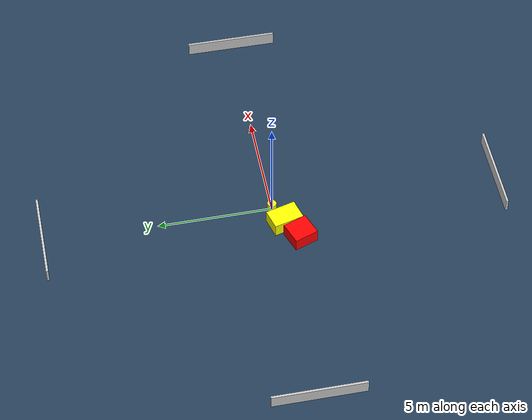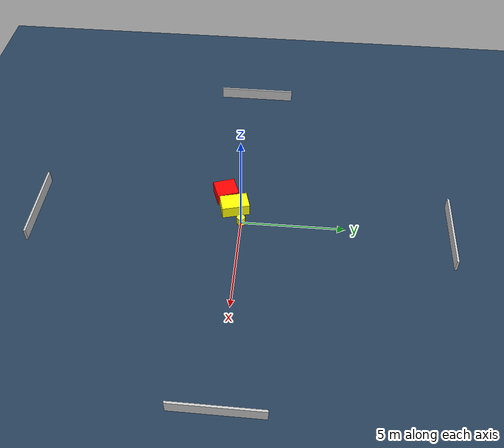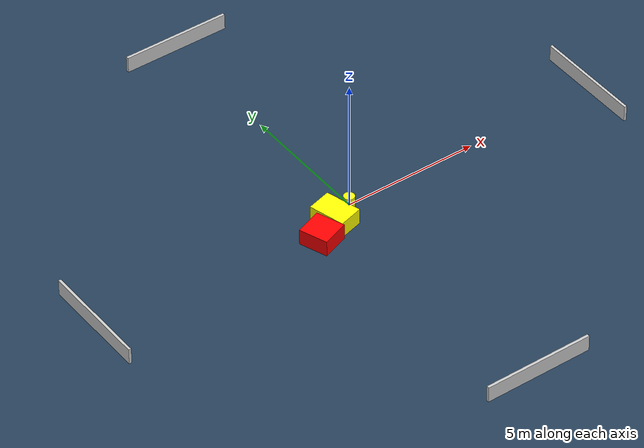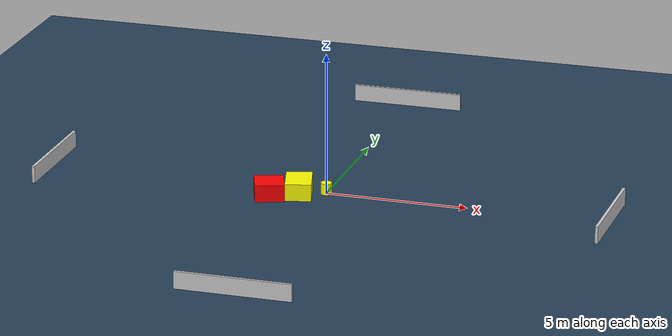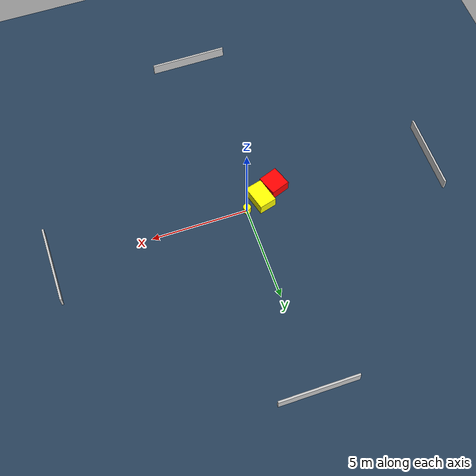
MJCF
<?xml version="1.0" ?>
<mujoco model="generated_environment">
  <option timestep="0.01" integrator="RK4" cone="elliptic"/>
  <default>
    <geom density="1"/>
  </default>
  <asset>
    <texture builtin="gradient" height="3072" name="skybox" rgb1="0.3 0.5 0.7" rgb2="0 0 0" type="skybox" width="512"/>
    <texture builtin="checker" height="300" name="groundplane" rgb1="0.2 0.3 0.4" rgb2="0.1 0.2 0.3" type="2d" width="300"/>
    <material name="groundplane" reflectance="0.2" texrepeat="5 5" texture="groundplane"/>
  </asset>
  <worldbody>
    <light dir="0 0 -1" directional="true" pos="0 0 1.5"/>
    <geom condim="3" friction="0.5 0.005 0.001" material="groundplane" name="floor" pos="0 0 0" size="0 0 0.05" type="plane"/>
    <body name="walls">
      <geom name="wall_1" condim="4" pos="-10.0 0.0 0.3" rgba="0.800000011920929 0.800000011920929 0.800000011920929 1.0" size="0.05 2.0 0.3" type="box"/>
      <geom name="wall_2" condim="4" pos="10.0 0.0 0.3" rgba="0.800000011920929 0.800000011920929 0.800000011920929 1.0" size="0.05 2.0 0.3" type="box"/>
      <geom name="wall_3" condim="4" pos="0.0 -10.0 0.3" rgba="0.800000011920929 0.800000011920929 0.800000011920929 1.0" size="2.0 0.05 0.3" type="box"/>
      <geom name="wall_4" condim="4" pos="0.0 10.0 0.3" rgba="0.800000011920929 0.800000011920929 0.800000011920929 1.0" size="2.0 0.05 0.3" type="box"/>
    </body>
    <body name="robot">
      <joint name="joint_x" type="slide" pos="0 0 0" axis="1 0 0"/>
      <joint name="joint_y" type="slide" pos="0 0 0" axis="0 1 0"/>
      <geom name="robot" type="cylinder" pos="0.0 0.0 0.2" size="0.2 0.2 0.0" mass="5.0" friction="1.0 0.005 0.0001" condim="4" rgba="1.0 1.0 0.0 1.0"/>
    </body>
    <body name="obstacle_1_movable">
      <geom name="obstacle_1_movable" condim="4" pos="-0.8672619858512972 -0.39459755003874064 0.3" euler="0 0 105.34406995787926" friction="0.0 0.005 0.001" rgba="1.0 1.0 0.0 1.0" size="0.6721243469500142 0.45519634273085313 0.3" type="box" mass="0.1"/>
      <joint type="free"/>
    </body>
    <body name="obstacle_2_static">
      <geom name="obstacle_2_static" condim="4" pos="-1.766574592808143 -0.9100039523774585 0.3" euler="0 0 200.16162229878256" friction="0.0 0.005 0.001" rgba="1.0 0.0 0.0 1.0" size="0.5106033526098439 0.5372266229594104 0.3" type="box"/>
    </body>
  </worldbody>
  <actuator>
    <motor name="actuator_x" joint="joint_x" gear="1" ctrlrange="-1 1"/>
    <motor name="actuator_y" joint="joint_y" gear="1" ctrlrange="-1 1"/>
  </actuator>
</mujoco>
